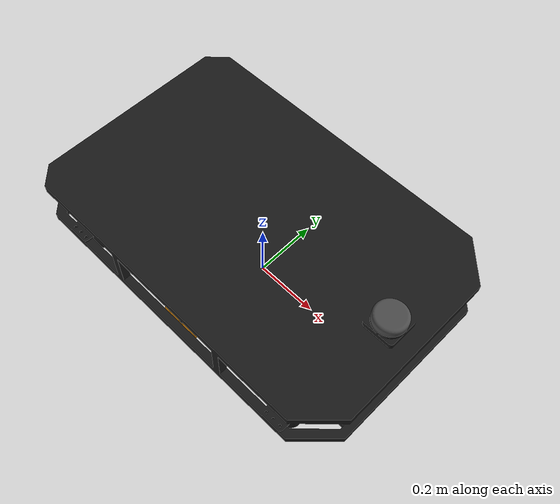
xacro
<?xml version="1.0" ?>
<robot name="t500" xmlns:xacro="http://www.ros.org/wiki/xacro">

<xacro:include filename="$(find t500_description)/urdf/materials.xacro" />
<xacro:include filename="$(find t500_description)/urdf/t500.trans" />
<xacro:include filename="$(find t500_description)/urdf/t500.gazebo" />
<link name="base_footprint">
  <inertial>
    <origin xyz="-0.014391976478214046 0.002494035782161673 0.15841751119387604" rpy="0 0 0"/>
    <mass value="41.9500881926306"/>
    <inertia ixx="2.138621" iyy="4.599842" izz="6.082052" ixy="-0.00016" iyz="3.6e-05" ixz="-0.044564"/>
  </inertial>
  <visual>
    <origin xyz="0 0 0" rpy="0 0 0"/>
    <geometry>
      <mesh filename="file://$(find t500_description)/meshes/base_footprint.stl" scale="0.001 0.001 0.001"/>
    </geometry>
    <material name="black"/>
  </visual>
  <collision>
    <origin xyz="0 0 0" rpy="0 0 0"/>
    <geometry>
      <mesh filename="file://$(find t500_description)/meshes/base_footprint.stl" scale="0.001 0.001 0.001"/>
    </geometry>
  </collision>
</link>

<link name="base_link"/>

<joint name="base_footprint_joint" type="fixed">
  <parent link="base_footprint"/>
  <child link="base_link"/>
  <origin xyz="0 0 0" rpy="0 0 0"/>
</joint>

<link name="right_wheel">
  <inertial>
    <origin xyz="2.7087748407685075e-07 0.019850434763655445 -1.753358988831888e-07" rpy="0 0 0"/>
    <mass value="0.8308814407786927"/>
    <inertia ixx="0.001" iyy="0.00167" izz="0.001" ixy="0.0" iyz="-0.0" ixz="0.0"/>
  </inertial>
  <visual>
    <origin xyz="0.012329 0.316315 -0.06349" rpy="0 0 0"/>
    <geometry>
      <mesh filename="file://$(find t500_description)/meshes/right_wheel.stl" scale="0.001 0.001 0.001"/>
    </geometry>
    <material name="orange"/>
  </visual>
  <collision>
    <origin xyz="0.012329 0.316315 -0.06349" rpy="0 0 0"/>
    <geometry>
      <mesh filename="file://$(find t500_description)/meshes/right_wheel.stl" scale="0.001 0.001 0.001"/>
    </geometry>
  </collision>
</link>

<link name="left_wheel">
  <inertial>
    <origin xyz="-2.7087745627096815e-07 -0.019850434763654334 -1.7539417170031602e-07" rpy="0 0 0"/>
    <mass value="0.8308814407786927"/>
    <inertia ixx="0.001" iyy="0.00167" izz="0.001" ixy="-0.0" iyz="-0.0" ixz="-0.0"/>
  </inertial>
  <visual>
    <origin xyz="0.012671 -0.321315 -0.06349" rpy="0 0 0"/>
    <geometry>
      <mesh filename="file://$(find t500_description)/meshes/left_wheel.stl" scale="0.001 0.001 0.001"/>
    </geometry>
    <material name="orange"/>
  </visual>
  <collision>
    <origin xyz="0.012671 -0.321315 -0.06349" rpy="0 0 0"/>
    <geometry>
      <mesh filename="file://$(find t500_description)/meshes/left_wheel.stl" scale="0.001 0.001 0.001"/>
    </geometry>
  </collision>
</link>

<link name="lidar">
  <inertial>
    <origin xyz="4.996003610813204e-16 1.214306433183765e-17 0.012153287763090215" rpy="0 0 0"/>
    <mass value="0.2013033395239235"/>
    <inertia ixx="0.000132" iyy="0.000132" izz="0.000245" ixy="0.0" iyz="-0.0" ixz="-0.0"/>
  </inertial>
  <visual>
    <origin xyz="-0.45 -0.0025 -0.2965" rpy="0 0 0"/>
    <geometry>
      <mesh filename="file://$(find t500_description)/meshes/lidar.stl" scale="0.001 0.001 0.001"/>
    </geometry>
    <material name="light_black"/>
  </visual>
  <collision>
    <origin xyz="-0.45 -0.0025 -0.2965" rpy="0 0 0"/>
    <geometry>
      <mesh filename="file://$(find t500_description)/meshes/lidar.stl" scale="0.001 0.001 0.001"/>
    </geometry>
  </collision>
</link>

<joint name="right_wheel_joint" type="continuous">
  <origin xyz="-0.012329 -0.316315 0.06349" rpy="0 0 0"/>
  <parent link="base_footprint"/>
  <child link="right_wheel"/>
  <axis xyz="0.0 1.0 0.0"/>
</joint>

<joint name="left_wheel_joint" type="continuous">
  <origin xyz="-0.012671 0.321315 0.06349" rpy="0 0 0"/>
  <parent link="base_footprint"/>
  <child link="left_wheel"/>
  <axis xyz="0.0 1.0 0.0"/>
</joint>

<joint name="Rigid 16" type="fixed">
  <origin xyz="0.45 0.0025 0.2965" rpy="0 0 0"/>
  <parent link="base_footprint"/>
  <child link="lidar"/>
</joint>

</robot>

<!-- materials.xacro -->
<robot name="t500" xmlns:xacro="http://www.ros.org/wiki/xacro" >

<material name="silver">
  <color rgba="0.700 0.700 0.700 1.000"/>
</material>

<material name="orange">
  <color rgba="0.8 0.5 0.05 1.000"/>
</material>

<material name="black">
  <color rgba="0.1 0.1 0.1 1.000"/>
</material>

<material name="light_black">
  <color rgba="0.3 0.3 0.3 1.000"/>
</material>

<material name="brass">
  <color rgba="0.6 0.49 0.004 1.000"/>
</material>

<material name="green">
  <color rgba="0.08 0.471 0.169 1.000"/>
</material>

</robot>

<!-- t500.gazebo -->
<robot name="t500" xmlns:xacro="http://www.ros.org/wiki/xacro">

  <xacro:property name="body_color" value="Gazebo/Silver" />

  <xacro:property name="dark_grey" value="Gazebo/DarkGrey" />
  <xacro:property name="orange" value="Gazebo/Orange" />
  <xacro:property name="black" value="Gazebo/Black" />
  <xacro:property name="r_name" value="t500" />

  <gazebo>
    <plugin name="control" filename="libgazebo_ros_control.so" />
  </gazebo>
  <gazebo reference="base_footprint">
    <material>${black}</material>
    <mu1>0.2</mu1>
    <mu2>0.2</mu2>
    <self_collide>true</self_collide>
    <gravity>true</gravity>
  </gazebo>

  <gazebo reference="right_wheel">
    <material>${orange}</material>
    <mu1>1000</mu1>
    <mu2>1000</mu2>
    <self_collide>true</self_collide>
  </gazebo>

  <gazebo reference="left_wheel">
    <material>${orange}</material>
    <mu1>1000</mu1>
    <mu2>1000</mu2>
    <self_collide>true</self_collide>
  </gazebo>

  <gazebo reference="lidar">
    <material>${dark_grey}</material>
    <mu1>0.2</mu1>
    <mu2>0.2</mu2>
    <self_collide>true</self_collide>
  </gazebo>

  <gazebo>
    <plugin name="differential_drive_controller" filename="libgazebo_ros_diff_drive.so">
      <updateRate>30</updateRate>
      <left_joint>left_wheel_joint</left_joint>
      <right_joint>right_wheel_joint</right_joint>

      <wheel_separation>1.0</wheel_separation>
      <wheel_diameter>0.127</wheel_diameter>

      <max_wheel_acceleration>1.0</max_wheel_acceleration>
      <max_wheel_torque>100</max_wheel_torque>

      <publish_odom>true</publish_odom>
      <publish_odom_tf>true</publish_odom_tf>
      <publish_wheel_tf>true</publish_wheel_tf>

      <odometry_topic>odom</odometry_topic>
      <odometry_frame>odom</odometry_frame>
      <robot_base_frame>base_footprint</robot_base_frame>

    </plugin>
  </gazebo>

  <!-- Lidar -->
  <gazebo reference="lidar">
    <material>${dark_grey}</material>
    <sensor type="ray" name="rp_lidar">
      <pose>0 0 0 0 0 0</pose>
      <visualize>true</visualize>
      <update_rate>10</update_rate>
      <ray>
        <scan>
          <horizontal>
            <samples>360</samples>
            <min_angle>-3.14</min_angle>
            <max_angle>3.14</max_angle>
          </horizontal>
        </scan>
        <range>
          <min>0.15</min>
          <max>6</max>
          <resolution>0.01</resolution>
        </range>
      </ray>
      <plugin name="gazebo_ros_head_rplidar_controller" filename="libgazebo_ros_ray_sensor.so">
        <ros>
          <remapping>~/out:=scan</remapping>
        </ros>
        <output_type>sensor_msgs/LaserScan</output_type>
        <frame_name>lidar</frame_name>
      </plugin>
    </sensor>
  </gazebo>

</robot>
